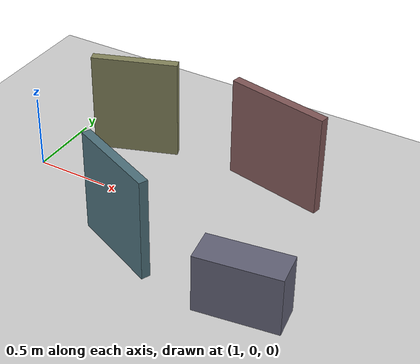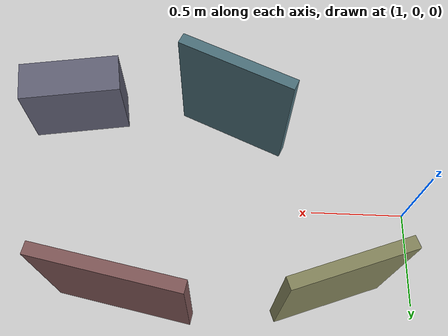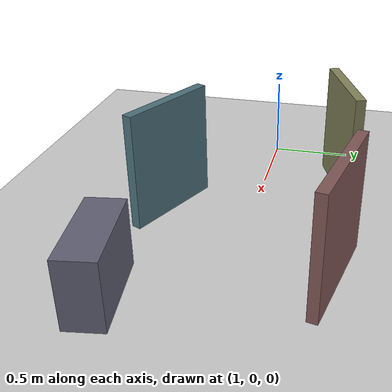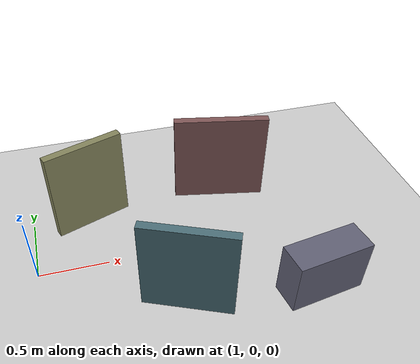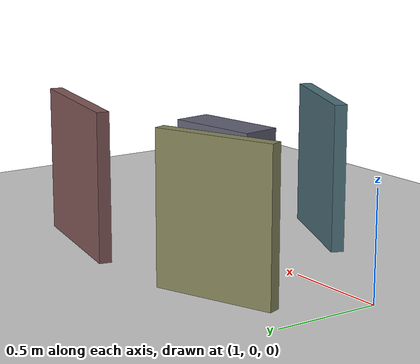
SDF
<?xml version="1.0"?>
<sdf version="1.9">
  <world name="follow_me_rectangular_panels">
    <plugin filename="libignition-gazebo-physics-system.so"
            name="ignition::gazebo::systems::Physics"/>
    <plugin filename="libignition-gazebo-user-commands-system.so"
            name="ignition::gazebo::systems::UserCommands"/>
    <plugin filename="libignition-gazebo-scene-broadcaster-system.so"
            name="ignition::gazebo::systems::SceneBroadcaster"/>
    <plugin filename="libignition-gazebo-sensors-system.so"
            name="ignition::gazebo::systems::Sensors">
      <!-- FortressではLiDAR出力をGazebo Transportへ出し、ROS側へはros_gz_bridgeで接続する。 -->
      <render_engine>ogre2</render_engine>
    </plugin>

    <physics name="default_physics" type="ode">
      <max_step_size>0.001</max_step_size>
      <real_time_update_rate>1000</real_time_update_rate>
      <real_time_factor>1.0</real_time_factor>
    </physics>

    <scene>
      <ambient>0.45 0.45 0.45 1</ambient>
      <background>0.7 0.7 0.7 1</background>
      <shadows>true</shadows>
    </scene>

    <light type="directional" name="sun">
      <cast_shadows>true</cast_shadows>
      <pose>0 0 10 0 0 0</pose>
      <diffuse>0.8 0.8 0.8 1</diffuse>
      <specular>0.2 0.2 0.2 1</specular>
      <attenuation>
        <range>1000</range>
        <constant>0.9</constant>
        <linear>0.01</linear>
        <quadratic>0.001</quadratic>
      </attenuation>
      <direction>-0.5 0.1 -0.9</direction>
    </light>

    <model name="ground_plane">
      <static>true</static>
      <link name="link">
        <collision name="collision">
          <geometry>
            <plane>
              <normal>0 0 1</normal>
              <size>100 100</size>
            </plane>
          </geometry>
        </collision>
        <visual name="visual">
          <geometry>
            <plane>
              <normal>0 0 1</normal>
              <size>100 100</size>
            </plane>
          </geometry>
          <material>
            <ambient>0.8 0.8 0.8 1</ambient>
            <diffuse>0.8 0.8 0.8 1</diffuse>
          </material>
        </visual>
      </link>
    </model>

    <model name="panel_left_near">
      <static>true</static>
      <pose>1.45 0.48 0.35 0 0 0.35</pose>
      <link name="link">
        <collision name="collision">
          <geometry>
            <box>
              <size>0.58 0.06 0.70</size>
            </box>
          </geometry>
        </collision>
        <visual name="visual">
          <visibility_flags>536870913</visibility_flags>
          <geometry>
            <box>
              <size>0.58 0.06 0.70</size>
            </box>
          </geometry>
          <material>
            <ambient>0.52 0.52 0.36 1</ambient>
            <diffuse>0.52 0.52 0.36 1</diffuse>
          </material>
        </visual>
      </link>
    </model>

    <model name="panel_right_mid">
      <static>true</static>
      <pose>1.95 -0.50 0.35 0 0 -0.42</pose>
      <link name="link">
        <collision name="collision">
          <geometry>
            <box>
              <size>0.62 0.06 0.70</size>
            </box>
          </geometry>
        </collision>
        <visual name="visual">
          <visibility_flags>536870913</visibility_flags>
          <geometry>
            <box>
              <size>0.62 0.06 0.70</size>
            </box>
          </geometry>
          <material>
            <ambient>0.30 0.44 0.48 1</ambient>
            <diffuse>0.30 0.44 0.48 1</diffuse>
          </material>
        </visual>
      </link>
    </model>

    <model name="panel_left_far">
      <static>true</static>
      <pose>2.48 0.54 0.35 0 0 -0.20</pose>
      <link name="link">
        <collision name="collision">
          <geometry>
            <box>
              <size>0.70 0.06 0.70</size>
            </box>
          </geometry>
        </collision>
        <visual name="visual">
          <visibility_flags>536870913</visibility_flags>
          <geometry>
            <box>
              <size>0.70 0.06 0.70</size>
            </box>
          </geometry>
          <material>
            <ambient>0.50 0.34 0.34 1</ambient>
            <diffuse>0.50 0.34 0.34 1</diffuse>
          </material>
        </visual>
      </link>
    </model>

    <model name="low_rectangular_block_right">
      <static>true</static>
      <pose>2.85 -0.58 0.20 0 0 0.15</pose>
      <link name="link">
        <collision name="collision">
          <geometry>
            <box>
              <size>0.54 0.22 0.40</size>
            </box>
          </geometry>
        </collision>
        <visual name="visual">
          <visibility_flags>536870913</visibility_flags>
          <geometry>
            <box>
              <size>0.54 0.22 0.40</size>
            </box>
          </geometry>
          <material>
            <ambient>0.38 0.38 0.46 1</ambient>
            <diffuse>0.38 0.38 0.46 1</diffuse>
          </material>
        </visual>
      </link>
    </model>
  </world>
</sdf>
